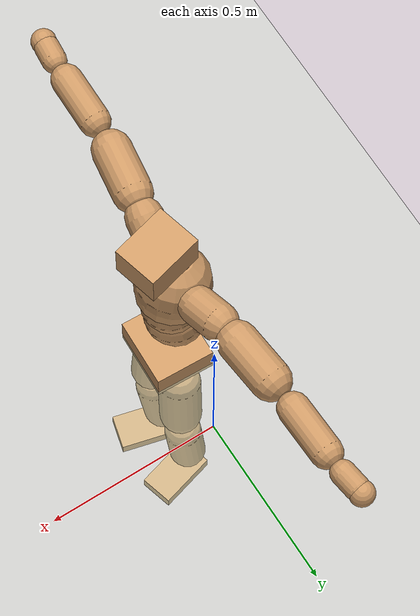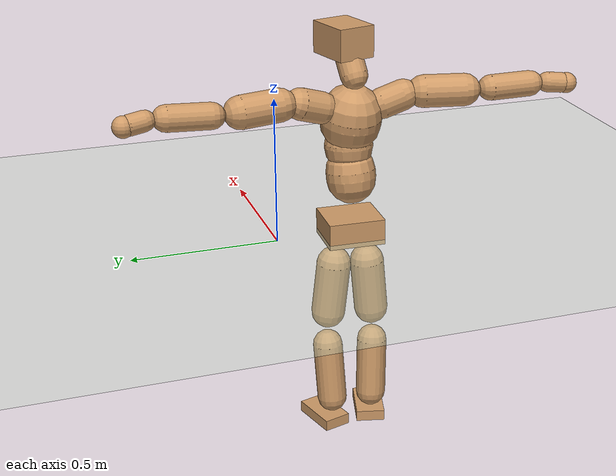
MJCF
<mujoco model="humanoid">
  <compiler coordinate="local" angle="radian"/>
  <default>
    <joint damping="0.0" armature="0.01" stiffness="0.0" limited="true"/>
    <geom conaffinity="1" condim="3" contype="7" margin="0.001" rgba="0.8 0.6 .4 1"/>
  </default>
  <asset>
    <texture type="skybox" builtin="gradient" rgb1=".4 .5 .6" rgb2="0 0 0" width="100" height="100"/>
    <texture builtin="flat" height="1278" mark="cross" markrgb="1 1 1" name="texgeom" random="0.01" rgb1="0.8 0.6 0.4" rgb2="0.8 0.6 0.4" type="cube" width="127"/>
    <texture builtin="checker" height="100" name="texplane" rgb1="0 0 0" rgb2="0.8 0.8 0.8" type="2d" width="100"/>
    <material name="MatPlane" reflectance="0.5" shininess="1" specular="1" texrepeat="60 60" texture="texplane"/>
    <material name="geom" texture="texgeom" texuniform="true"/>
  </asset>
  <worldbody>
    <light cutoff="100" diffuse="1 1 1" dir="-0 0 -1.3" directional="true" exponent="1" pos="0 0 1.3" specular=".1 .1 .1"/>
    <geom conaffinity="1" condim="3" name="floor" pos="0 0 0" rgba="0.8 0.9 0.8 1" size="100 100 .2" type="plane" material="MatPlane"/>
    <body name="Pelvis" pos="-0.0064 -0.2569 0.0334">
      <freejoint name="Pelvis"/>
      <geom type="box" contype="1" conaffinity="1" density="500" pos="-0.0103 0.0004 -0.0073" size="0.0847 0.0976 0.0445" quat="0.9998 0.0000 0.0000 -0.0188" name="Pelvis"/>
      <body name="L_Hip" pos="-0.0119 0.0546 -0.0775">
        <joint name="L_Hip_x" type="hinge" pos="0 0 0" axis="1 0 0" stiffness="800" damping="80" armature="0.02" range="-180.0000 180.0000"/>
        <joint name="L_Hip_y" type="hinge" pos="0 0 0" axis="0 1 0" stiffness="800" damping="80" armature="0.02" range="-180.0000 180.0000"/>
        <joint name="L_Hip_z" type="hinge" pos="0 0 0" axis="0 0 1" stiffness="800" damping="80" armature="0.02" range="-180.0000 180.0000"/>
        <geom type="capsule" contype="1" conaffinity="1" density="500" fromto="0.0028 0.0062 -0.0618 0.0112 0.0248 -0.2470" size="0.0594" name="L_Hip"/>
        <body name="L_Knee" pos="0.014 0.0311 -0.3088">
          <joint name="L_Knee_x" type="hinge" pos="0 0 0" axis="1 0 0" stiffness="800" damping="80" armature="0.02" range="-180.0000 180.0000"/>
          <joint name="L_Knee_y" type="hinge" pos="0 0 0" axis="0 1 0" stiffness="800" damping="80" armature="0.02" range="-180.0000 180.0000"/>
          <joint name="L_Knee_z" type="hinge" pos="0 0 0" axis="0 0 1" stiffness="800" damping="80" armature="0.02" range="-180.0000 180.0000"/>
          <geom type="capsule" contype="1" conaffinity="1" density="500" fromto="-0.0068 -0.0028 -0.0684 -0.0273 -0.0114 -0.2738" size="0.0522" name="L_Knee"/>
          <body name="L_Ankle" pos="-0.0342 -0.0142 -0.3422">
            <joint name="L_Ankle_x" type="hinge" pos="0 0 0" axis="1 0 0" stiffness="800" damping="80" armature="0.02" range="-180.0000 180.0000"/>
            <joint name="L_Ankle_y" type="hinge" pos="0 0 0" axis="0 1 0" stiffness="800" damping="80" armature="0.02" range="-180.0000 180.0000"/>
            <joint name="L_Ankle_z" type="hinge" pos="0 0 0" axis="0 0 1" stiffness="800" damping="80" armature="0.02" range="-180.0000 180.0000"/>
            <geom type="box" contype="1" conaffinity="1" density="500" pos="0.0560 0.0156 -0.0257" size="0.0847 0.0482 0.0195" quat="0.9908 0.0000 0.0000 0.1353" name="L_Ankle"/>
            <body name="L_Toe" pos="0.1121 0.0312 -0.0514">
              <joint name="L_Toe_x" type="hinge" pos="0 0 0" axis="1 0 0" stiffness="500" damping="50" armature="0.02" range="-180.0000 180.0000"/>
              <joint name="L_Toe_y" type="hinge" pos="0 0 0" axis="0 1 0" stiffness="500" damping="50" armature="0.02" range="-180.0000 180.0000"/>
              <joint name="L_Toe_z" type="hinge" pos="0 0 0" axis="0 0 1" stiffness="500" damping="50" armature="0.02" range="-180.0000 180.0000"/>
              <geom type="box" contype="1" conaffinity="1" density="500" pos="0.0000 0.0000 0.0246" size="0.001 0.0024 0.0009" quat="0.9900 0.0000 0.0000 0.1411" name="L_Toe"/>
            </body>
          </body>
        </body>
      </body>
      <body name="R_Hip" pos="-0.0067 -0.0559 -0.0855">
        <joint name="R_Hip_x" type="hinge" pos="0 0 0" axis="1 0 0" stiffness="800" damping="80" armature="0.02" range="-180.0000 180.0000"/>
        <joint name="R_Hip_y" type="hinge" pos="0 0 0" axis="0 1 0" stiffness="800" damping="80" armature="0.02" range="-180.0000 180.0000"/>
        <joint name="R_Hip_z" type="hinge" pos="0 0 0" axis="0 0 1" stiffness="800" damping="80" armature="0.02" range="-180.0000 180.0000"/>
        <geom type="capsule" contype="1" conaffinity="1" density="500" fromto="0.0004 -0.0057 -0.0614 0.0015 -0.0227 -0.2457" size="0.059" name="R_Hip"/>
        <body name="R_Knee" pos="0.0018 -0.0284 -0.3071">
          <joint name="R_Knee_x" type="hinge" pos="0 0 0" axis="1 0 0" stiffness="800" damping="80" armature="0.02" range="-180.0000 180.0000"/>
          <joint name="R_Knee_y" type="hinge" pos="0 0 0" axis="0 1 0" stiffness="800" damping="80" armature="0.02" range="-180.0000 180.0000"/>
          <joint name="R_Knee_z" type="hinge" pos="0 0 0" axis="0 0 1" stiffness="800" damping="80" armature="0.02" range="-180.0000 180.0000"/>
          <geom type="capsule" contype="1" conaffinity="1" density="500" fromto="-0.0064 0.0033 -0.0668 -0.0257 0.0133 -0.2672" size="0.0525" name="R_Knee"/>
          <body name="R_Ankle" pos="-0.0321 0.0167 -0.334">
            <joint name="R_Ankle_x" type="hinge" pos="0 0 0" axis="1 0 0" stiffness="800" damping="80" armature="0.02" range="-180.0000 180.0000"/>
            <joint name="R_Ankle_y" type="hinge" pos="0 0 0" axis="0 1 0" stiffness="800" damping="80" armature="0.02" range="-180.0000 180.0000"/>
            <joint name="R_Ankle_z" type="hinge" pos="0 0 0" axis="0 0 1" stiffness="800" damping="80" armature="0.02" range="-180.0000 180.0000"/>
            <geom type="box" contype="1" conaffinity="1" density="500" pos="0.0600 -0.0152 -0.0248" size="0.084 0.0502 0.0191" quat="0.9923 0.0000 0.0000 -0.1241" name="R_Ankle"/>
            <body name="R_Toe" pos="0.1199 -0.0305 -0.0497">
              <joint name="R_Toe_x" type="hinge" pos="0 0 0" axis="1 0 0" stiffness="500" damping="50" armature="0.02" range="-180.0000 180.0000"/>
              <joint name="R_Toe_y" type="hinge" pos="0 0 0" axis="0 1 0" stiffness="500" damping="50" armature="0.02" range="-180.0000 180.0000"/>
              <joint name="R_Toe_z" type="hinge" pos="0 0 0" axis="0 0 1" stiffness="500" damping="50" armature="0.02" range="-180.0000 180.0000"/>
              <geom type="box" contype="1" conaffinity="1" density="500" pos="0.0000 0.0000 0.0257" size="0.001 0.0025 0.001" quat="0.9934 0.0000 0.0000 -0.1144" name="R_Toe"/>
            </body>
          </body>
        </body>
      </body>
      <body name="Torso" pos="-0.0435 0.0036 0.1195">
        <joint name="Torso_x" type="hinge" pos="0 0 0" axis="1 0 0" stiffness="1000" damping="100" armature="0.02" range="-180.0000 180.0000"/>
        <joint name="Torso_y" type="hinge" pos="0 0 0" axis="0 1 0" stiffness="1000" damping="100" armature="0.02" range="-180.0000 180.0000"/>
        <joint name="Torso_z" type="hinge" pos="0 0 0" axis="0 0 1" stiffness="1000" damping="100" armature="0.02" range="-180.0000 180.0000"/>
        <geom type="capsule" contype="1" conaffinity="1" density="500" fromto="0.0140 0.0039 0.0856 0.0093 0.0026 0.0571" size="0.0839" name="Torso"/>
        <body name="Spine" pos="0.0233 0.0066 0.1427">
          <joint name="Spine_x" type="hinge" pos="0 0 0" axis="1 0 0" stiffness="1000" damping="100" armature="0.02" range="-180.0000 180.0000"/>
          <joint name="Spine_y" type="hinge" pos="0 0 0" axis="0 1 0" stiffness="1000" damping="100" armature="0.02" range="-180.0000 180.0000"/>
          <joint name="Spine_z" type="hinge" pos="0 0 0" axis="0 0 1" stiffness="1000" damping="100" armature="0.02" range="-180.0000 180.0000"/>
          <geom type="capsule" contype="1" conaffinity="1" density="500" fromto="0.0032 -0.0002 0.0347 0.0021 -0.0001 0.0232" size="0.0821" name="Spine"/>
          <body name="Chest" pos="0.0053 -0.0004 0.0579">
            <joint name="Chest_x" type="hinge" pos="0 0 0" axis="1 0 0" stiffness="1000" damping="100" armature="0.02" range="-180.0000 180.0000"/>
            <joint name="Chest_y" type="hinge" pos="0 0 0" axis="0 1 0" stiffness="1000" damping="100" armature="0.02" range="-180.0000 180.0000"/>
            <joint name="Chest_z" type="hinge" pos="0 0 0" axis="0 0 1" stiffness="1000" damping="100" armature="0.02" range="-180.0000 180.0000"/>
            <geom type="capsule" contype="1" conaffinity="1" density="500" fromto="-0.0160 -0.0047 0.0816 -0.0107 -0.0031 0.0544" size="0.1024" name="Chest"/>
            <body name="Neck" pos="-0.0358 -0.0126 0.1978">
              <joint name="Neck_x" type="hinge" pos="0 0 0" axis="1 0 0" stiffness="500" damping="50" armature="0.02" range="-180.0000 180.0000"/>
              <joint name="Neck_y" type="hinge" pos="0 0 0" axis="0 1 0" stiffness="500" damping="50" armature="0.02" range="-180.0000 180.0000"/>
              <joint name="Neck_z" type="hinge" pos="0 0 0" axis="0 0 1" stiffness="500" damping="50" armature="0.02" range="-180.0000 180.0000"/>
              <geom type="capsule" contype="1" conaffinity="1" density="500" fromto="0.0096 0.0022 0.0164 0.0382 0.0087 0.0657" size="0.0459" name="Neck"/>
              <body name="Head" pos="0.0478 0.0108 0.0821">
                <joint name="Head_x" type="hinge" pos="0 0 0" axis="1 0 0" stiffness="500" damping="50" armature="0.02" range="-180.0000 180.0000"/>
                <joint name="Head_y" type="hinge" pos="0 0 0" axis="0 1 0" stiffness="500" damping="50" armature="0.02" range="-180.0000 180.0000"/>
                <joint name="Head_z" type="hinge" pos="0 0 0" axis="0 0 1" stiffness="500" damping="50" armature="0.02" range="-180.0000 180.0000"/>
                <geom type="box" contype="1" conaffinity="1" density="500" pos="0.0249 0.0064 0.0421" size="0.0813 0.0643 0.0532" quat="0.9921 0.0000 0.0000 0.1257" name="Head"/>
              </body>
            </body>
            <body name="L_Thorax" pos="-0.0188 0.0728 0.1068">
              <joint name="L_Thorax_x" type="hinge" pos="0 0 0" axis="1 0 0" stiffness="500" damping="50" armature="0.02" range="-180.0000 180.0000"/>
              <joint name="L_Thorax_y" type="hinge" pos="0 0 0" axis="0 1 0" stiffness="500" damping="50" armature="0.02" range="-180.0000 180.0000"/>
              <joint name="L_Thorax_z" type="hinge" pos="0 0 0" axis="0 0 1" stiffness="500" damping="50" armature="0.02" range="-180.0000 180.0000"/>
              <geom type="capsule" contype="1" conaffinity="1" density="500" fromto="-0.0046 0.0260 0.0084 -0.0186 0.1038 0.0336" size="0.0531" name="L_Thorax"/>
              <body name="L_Shoulder" pos="-0.0232 0.1298 0.042">
                <joint name="L_Shoulder_x" type="hinge" pos="0 0 0" axis="1 0 0" stiffness="500" damping="50" armature="0.02" range="-720.0000 720.0000"/>
                <joint name="L_Shoulder_y" type="hinge" pos="0 0 0" axis="0 1 0" stiffness="500" damping="50" armature="0.02" range="-720.0000 720.0000"/>
                <joint name="L_Shoulder_z" type="hinge" pos="0 0 0" axis="0 0 1" stiffness="500" damping="50" armature="0.02" range="-720.0000 720.0000"/>
                <geom type="capsule" contype="1" conaffinity="1" density="500" fromto="-0.0049 0.0444 -0.0020 -0.0197 0.1777 -0.0079" size="0.0555" name="L_Shoulder"/>
                <body name="L_Elbow" pos="-0.0246 0.2221 -0.0099">
                  <joint name="L_Elbow_x" type="hinge" pos="0 0 0" axis="1 0 0" stiffness="500" damping="50" armature="0.02" range="-720.0000 720.0000"/>
                  <joint name="L_Elbow_y" type="hinge" pos="0 0 0" axis="0 1 0" stiffness="500" damping="50" armature="0.02" range="-720.0000 720.0000"/>
                  <joint name="L_Elbow_z" type="hinge" pos="0 0 0" axis="0 0 1" stiffness="500" damping="50" armature="0.02" range="-720.0000 720.0000"/>
                  <geom type="capsule" contype="1" conaffinity="1" density="500" fromto="-0.0010 0.0486 0.0026 -0.0041 0.1943 0.0104" size="0.0435" name="L_Elbow"/>
                  <body name="L_Wrist" pos="-0.0051 0.2429 0.013">
                    <joint name="L_Wrist_x" type="hinge" pos="0 0 0" axis="1 0 0" stiffness="300" damping="30" armature="0.02" range="-180.0000 180.0000"/>
                    <joint name="L_Wrist_y" type="hinge" pos="0 0 0" axis="0 1 0" stiffness="300" damping="30" armature="0.02" range="-180.0000 180.0000"/>
                    <joint name="L_Wrist_z" type="hinge" pos="0 0 0" axis="0 0 1" stiffness="300" damping="30" armature="0.02" range="-180.0000 180.0000"/>
                    <geom type="capsule" contype="1" conaffinity="1" density="500" fromto="-0.0030 0.0171 -0.0021 -0.0119 0.0683 -0.0086" size="0.0341" name="L_Wrist"/>
                    <body name="L_Hand" pos="-0.0149 0.0854 -0.0107">
                      <joint name="L_Hand_x" type="hinge" pos="0 0 0" axis="1 0 0" stiffness="300" damping="30" armature="0.02" range="-180.0000 180.0000"/>
                      <joint name="L_Hand_y" type="hinge" pos="0 0 0" axis="0 1 0" stiffness="300" damping="30" armature="0.02" range="-180.0000 180.0000"/>
                      <joint name="L_Hand_z" type="hinge" pos="0 0 0" axis="0 0 1" stiffness="300" damping="30" armature="0.02" range="-180.0000 180.0000"/>
                      <geom type="sphere" contype="1" conaffinity="1" density="500" size="0.0352" pos="0.0000 0.0000 0.0000" name="L_Hand"/>
                    </body>
                  </body>
                </body>
              </body>
            </body>
            <body name="R_Thorax" pos="-0.0256 -0.0836 0.1034">
              <joint name="R_Thorax_x" type="hinge" pos="0 0 0" axis="1 0 0" stiffness="500" damping="50" armature="0.02" range="-180.0000 180.0000"/>
              <joint name="R_Thorax_y" type="hinge" pos="0 0 0" axis="0 1 0" stiffness="500" damping="50" armature="0.02" range="-180.0000 180.0000"/>
              <joint name="R_Thorax_z" type="hinge" pos="0 0 0" axis="0 0 1" stiffness="500" damping="50" armature="0.02" range="-180.0000 180.0000"/>
              <geom type="capsule" contype="1" conaffinity="1" density="500" fromto="-0.0025 -0.0234 0.0083 -0.0102 -0.0936 0.0331" size="0.0522" name="R_Thorax"/>
              <body name="R_Shoulder" pos="-0.0127 -0.1171 0.0413">
                <joint name="R_Shoulder_x" type="hinge" pos="0 0 0" axis="1 0 0" stiffness="500" damping="50" armature="0.02" range="-720.0000 720.0000"/>
                <joint name="R_Shoulder_y" type="hinge" pos="0 0 0" axis="0 1 0" stiffness="500" damping="50" armature="0.02" range="-720.0000 720.0000"/>
                <joint name="R_Shoulder_z" type="hinge" pos="0 0 0" axis="0 0 1" stiffness="500" damping="50" armature="0.02" range="-720.0000 720.0000"/>
                <geom type="capsule" contype="1" conaffinity="1" density="500" fromto="-0.0068 -0.0457 -0.0007 -0.0273 -0.1828 -0.0028" size="0.055" name="R_Shoulder"/>
                <body name="R_Elbow" pos="-0.0341 -0.2286 -0.0035">
                  <joint name="R_Elbow_x" type="hinge" pos="0 0 0" axis="1 0 0" stiffness="500" damping="50" armature="0.02" range="-720.0000 720.0000"/>
                  <joint name="R_Elbow_y" type="hinge" pos="0 0 0" axis="0 1 0" stiffness="500" damping="50" armature="0.02" range="-720.0000 720.0000"/>
                  <joint name="R_Elbow_z" type="hinge" pos="0 0 0" axis="0 0 1" stiffness="500" damping="50" armature="0.02" range="-720.0000 720.0000"/>
                  <geom type="capsule" contype="1" conaffinity="1" density="500" fromto="-0.0004 -0.0478 0.0006 -0.0018 -0.1913 0.0024" size="0.0433" name="R_Elbow"/>
                  <body name="R_Wrist" pos="-0.0022 -0.2392 0.003">
                    <joint name="R_Wrist_x" type="hinge" pos="0 0 0" axis="1 0 0" stiffness="300" damping="30" armature="0.02" range="-180.0000 180.0000"/>
                    <joint name="R_Wrist_y" type="hinge" pos="0 0 0" axis="0 1 0" stiffness="300" damping="30" armature="0.02" range="-180.0000 180.0000"/>
                    <joint name="R_Wrist_z" type="hinge" pos="0 0 0" axis="0 0 1" stiffness="300" damping="30" armature="0.02" range="-180.0000 180.0000"/>
                    <geom type="capsule" contype="1" conaffinity="1" density="500" fromto="-0.0020 -0.0172 -0.0017 -0.0078 -0.0688 -0.0070" size="0.0342" name="R_Wrist"/>
                    <body name="R_Hand" pos="-0.0098 -0.086 -0.0087">
                      <joint name="R_Hand_x" type="hinge" pos="0 0 0" axis="1 0 0" stiffness="300" damping="30" armature="0.02" range="-180.0000 180.0000"/>
                      <joint name="R_Hand_y" type="hinge" pos="0 0 0" axis="0 1 0" stiffness="300" damping="30" armature="0.02" range="-180.0000 180.0000"/>
                      <joint name="R_Hand_z" type="hinge" pos="0 0 0" axis="0 0 1" stiffness="300" damping="30" armature="0.02" range="-180.0000 180.0000"/>
                      <geom type="sphere" contype="1" conaffinity="1" density="500" size="0.0351" pos="0.0000 0.0000 0.0000" name="R_Hand"/>
                    </body>
                  </body>
                </body>
              </body>
            </body>
          </body>
        </body>
      </body>
    </body>
  </worldbody>
  <actuator>
    <motor name="L_Hip_x" joint="L_Hip_x" gear="500"/>
    <motor name="L_Hip_y" joint="L_Hip_y" gear="500"/>
    <motor name="L_Hip_z" joint="L_Hip_z" gear="500"/>
    <motor name="L_Knee_x" joint="L_Knee_x" gear="500"/>
    <motor name="L_Knee_y" joint="L_Knee_y" gear="500"/>
    <motor name="L_Knee_z" joint="L_Knee_z" gear="500"/>
    <motor name="L_Ankle_x" joint="L_Ankle_x" gear="500"/>
    <motor name="L_Ankle_y" joint="L_Ankle_y" gear="500"/>
    <motor name="L_Ankle_z" joint="L_Ankle_z" gear="500"/>
    <motor name="L_Toe_x" joint="L_Toe_x" gear="500"/>
    <motor name="L_Toe_y" joint="L_Toe_y" gear="500"/>
    <motor name="L_Toe_z" joint="L_Toe_z" gear="500"/>
    <motor name="R_Hip_x" joint="R_Hip_x" gear="500"/>
    <motor name="R_Hip_y" joint="R_Hip_y" gear="500"/>
    <motor name="R_Hip_z" joint="R_Hip_z" gear="500"/>
    <motor name="R_Knee_x" joint="R_Knee_x" gear="500"/>
    <motor name="R_Knee_y" joint="R_Knee_y" gear="500"/>
    <motor name="R_Knee_z" joint="R_Knee_z" gear="500"/>
    <motor name="R_Ankle_x" joint="R_Ankle_x" gear="500"/>
    <motor name="R_Ankle_y" joint="R_Ankle_y" gear="500"/>
    <motor name="R_Ankle_z" joint="R_Ankle_z" gear="500"/>
    <motor name="R_Toe_x" joint="R_Toe_x" gear="500"/>
    <motor name="R_Toe_y" joint="R_Toe_y" gear="500"/>
    <motor name="R_Toe_z" joint="R_Toe_z" gear="500"/>
    <motor name="Torso_x" joint="Torso_x" gear="500"/>
    <motor name="Torso_y" joint="Torso_y" gear="500"/>
    <motor name="Torso_z" joint="Torso_z" gear="500"/>
    <motor name="Spine_x" joint="Spine_x" gear="500"/>
    <motor name="Spine_y" joint="Spine_y" gear="500"/>
    <motor name="Spine_z" joint="Spine_z" gear="500"/>
    <motor name="Chest_x" joint="Chest_x" gear="500"/>
    <motor name="Chest_y" joint="Chest_y" gear="500"/>
    <motor name="Chest_z" joint="Chest_z" gear="500"/>
    <motor name="Neck_x" joint="Neck_x" gear="500"/>
    <motor name="Neck_y" joint="Neck_y" gear="500"/>
    <motor name="Neck_z" joint="Neck_z" gear="500"/>
    <motor name="Head_x" joint="Head_x" gear="500"/>
    <motor name="Head_y" joint="Head_y" gear="500"/>
    <motor name="Head_z" joint="Head_z" gear="500"/>
    <motor name="L_Thorax_x" joint="L_Thorax_x" gear="500"/>
    <motor name="L_Thorax_y" joint="L_Thorax_y" gear="500"/>
    <motor name="L_Thorax_z" joint="L_Thorax_z" gear="500"/>
    <motor name="L_Shoulder_x" joint="L_Shoulder_x" gear="500"/>
    <motor name="L_Shoulder_y" joint="L_Shoulder_y" gear="500"/>
    <motor name="L_Shoulder_z" joint="L_Shoulder_z" gear="500"/>
    <motor name="L_Elbow_x" joint="L_Elbow_x" gear="500"/>
    <motor name="L_Elbow_y" joint="L_Elbow_y" gear="500"/>
    <motor name="L_Elbow_z" joint="L_Elbow_z" gear="500"/>
    <motor name="L_Wrist_x" joint="L_Wrist_x" gear="500"/>
    <motor name="L_Wrist_y" joint="L_Wrist_y" gear="500"/>
    <motor name="L_Wrist_z" joint="L_Wrist_z" gear="500"/>
    <motor name="L_Hand_x" joint="L_Hand_x" gear="500"/>
    <motor name="L_Hand_y" joint="L_Hand_y" gear="500"/>
    <motor name="L_Hand_z" joint="L_Hand_z" gear="500"/>
    <motor name="R_Thorax_x" joint="R_Thorax_x" gear="500"/>
    <motor name="R_Thorax_y" joint="R_Thorax_y" gear="500"/>
    <motor name="R_Thorax_z" joint="R_Thorax_z" gear="500"/>
    <motor name="R_Shoulder_x" joint="R_Shoulder_x" gear="500"/>
    <motor name="R_Shoulder_y" joint="R_Shoulder_y" gear="500"/>
    <motor name="R_Shoulder_z" joint="R_Shoulder_z" gear="500"/>
    <motor name="R_Elbow_x" joint="R_Elbow_x" gear="500"/>
    <motor name="R_Elbow_y" joint="R_Elbow_y" gear="500"/>
    <motor name="R_Elbow_z" joint="R_Elbow_z" gear="500"/>
    <motor name="R_Wrist_x" joint="R_Wrist_x" gear="500"/>
    <motor name="R_Wrist_y" joint="R_Wrist_y" gear="500"/>
    <motor name="R_Wrist_z" joint="R_Wrist_z" gear="500"/>
    <motor name="R_Hand_x" joint="R_Hand_x" gear="500"/>
    <motor name="R_Hand_y" joint="R_Hand_y" gear="500"/>
    <motor name="R_Hand_z" joint="R_Hand_z" gear="500"/>
  </actuator>
  <contact>
    <exclude body1="Torso" body2="Chest"/>
    <exclude body1="Head" body2="Chest"/>
    <exclude body1="R_Knee" body2="R_Toe"/>
    <exclude body1="R_Knee" body2="L_Ankle"/>
    <exclude body1="R_Knee" body2="L_Toe"/>
    <exclude body1="L_Knee" body2="L_Toe"/>
    <exclude body1="L_Knee" body2="R_Ankle"/>
    <exclude body1="L_Knee" body2="R_Toe"/>
    <exclude body1="L_Shoulder" body2="Chest"/>
    <exclude body1="R_Shoulder" body2="Chest"/>
  </contact>
  <sensor/>
  <size njmax="700" nconmax="700"/>
</mujoco>
